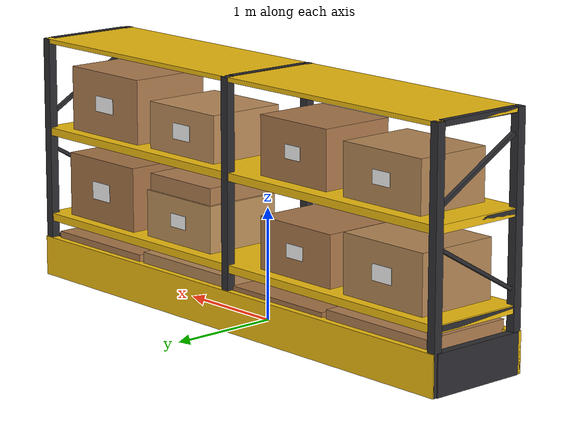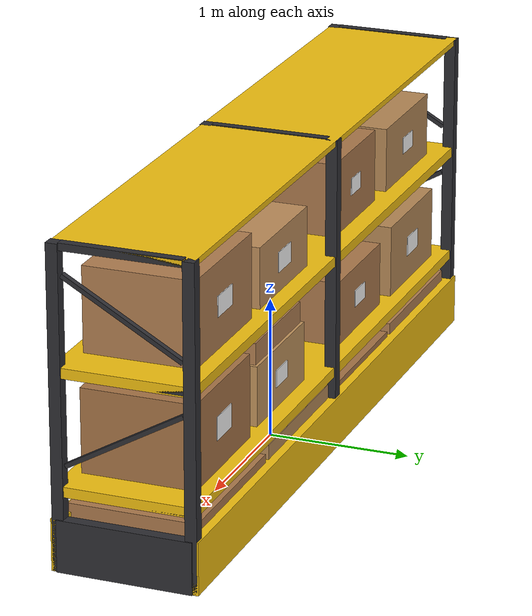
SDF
<?xml version="1.0"?>
<sdf version="1.9">
  <model name="shelf">
    <static>true</static>

    <!-- Single efficient bounding collision for ODE physics -->
    <link name="shelf_link">
      <collision name="shelf_collision">
        <!-- Sits on the floor: box centre at half its height, not at z=0. -->
        <pose>0 0 1.1 0 0 0</pose>
        <geometry>
          <box>
            <size>5.0 1.0 2.2</size>
          </box>
        </geometry>
      </collision>

      <!-- GROUND-LEVEL RACK BODY                       -->
      <!-- The 2D LiDAR scans at z = 0.26 m. Without    -->
      <!-- geometry at that height the rack is sensed   -->
      <!-- as six 80 mm posts while physics treats it   -->
      <!-- as a solid 5.0 x 1.0 x 2.2 box, so Nav2      -->
      <!-- plans straight through it. These base rails  -->
      <!-- and ground-level pallet loads are ordinary   -->
      <!-- racking hardware and make the sensed shape   -->
      <!-- agree with the collision shape.              -->

      <!-- Base protection rails along both aisle faces (z 0.00 - 0.36) -->
      <visual name="base_rail_front"><pose>0 0.46 0.18 0 0 0</pose><geometry><box><size>4.98 0.08 0.36</size></box></geometry><material><ambient>0.88 0.68 0.04 1</ambient><diffuse>0.96 0.76 0.06 1</diffuse></material></visual>
      <visual name="base_rail_rear"><pose>0 -0.46 0.18 0 0 0</pose><geometry><box><size>4.98 0.08 0.36</size></box></geometry><material><ambient>0.88 0.68 0.04 1</ambient><diffuse>0.96 0.76 0.06 1</diffuse></material></visual>
      <!-- End-frame base plates (z 0.00 - 0.36) -->
      <visual name="base_rail_left"><pose>-2.46 0 0.18 0 0 0</pose><geometry><box><size>0.08 0.92 0.36</size></box></geometry><material><ambient>0.12 0.12 0.14 1</ambient><diffuse>0.18 0.18 0.20 1</diffuse></material></visual>
      <visual name="base_rail_right"><pose>2.46 0 0.18 0 0 0</pose><geometry><box><size>0.08 0.92 0.36</size></box></geometry><material><ambient>0.12 0.12 0.14 1</ambient><diffuse>0.18 0.18 0.20 1</diffuse></material></visual>

      <!-- Ground-level pallet bay loads (floor to the tier-1 deck) -->
      <visual name="box_gl_1"><pose>-1.78 0 0.22 0 0 0</pose><geometry><box><size>1.15 0.88 0.44</size></box></geometry><material><ambient>0.60 0.42 0.24 1</ambient><diffuse>0.70 0.50 0.32 1</diffuse></material></visual>
      <visual name="box_gl_2"><pose>-0.60 0 0.20 0 0 0</pose><geometry><box><size>1.10 0.88 0.40</size></box></geometry><material><ambient>0.56 0.38 0.20 1</ambient><diffuse>0.66 0.46 0.28 1</diffuse></material></visual>
      <visual name="box_gl_3"><pose>0.60 0 0.23 0 0 0</pose><geometry><box><size>1.10 0.88 0.46</size></box></geometry><material><ambient>0.62 0.44 0.26 1</ambient><diffuse>0.72 0.54 0.34 1</diffuse></material></visual>
      <visual name="box_gl_4"><pose>1.78 0 0.21 0 0 0</pose><geometry><box><size>1.15 0.88 0.42</size></box></geometry><material><ambient>0.58 0.40 0.22 1</ambient><diffuse>0.68 0.48 0.30 1</diffuse></material></visual>

      <!-- INDUSTRIAL RACK STRUCTURAL FRAME             -->

      <!-- 6 Vertical Structural Uprights (Dark Anthracite Steel) -->
      <visual name="col_fl"><pose>-2.45 0.45 1.1 0 0 0</pose><geometry><box><size>0.08 0.08 2.2</size></box></geometry><material><ambient>0.12 0.12 0.14 1</ambient><diffuse>0.18 0.18 0.20 1</diffuse></material></visual>
      <visual name="col_fr"><pose>2.45 0.45 1.1 0 0 0</pose><geometry><box><size>0.08 0.08 2.2</size></box></geometry><material><ambient>0.12 0.12 0.14 1</ambient><diffuse>0.18 0.18 0.20 1</diffuse></material></visual>
      <visual name="col_rl"><pose>-2.45 -0.45 1.1 0 0 0</pose><geometry><box><size>0.08 0.08 2.2</size></box></geometry><material><ambient>0.12 0.12 0.14 1</ambient><diffuse>0.18 0.18 0.20 1</diffuse></material></visual>
      <visual name="col_rr"><pose>2.45 -0.45 1.1 0 0 0</pose><geometry><box><size>0.08 0.08 2.2</size></box></geometry><material><ambient>0.12 0.12 0.14 1</ambient><diffuse>0.18 0.18 0.20 1</diffuse></material></visual>
      <visual name="col_mc_f"><pose>0 0.45 1.1 0 0 0</pose><geometry><box><size>0.08 0.08 2.2</size></box></geometry><material><ambient>0.12 0.12 0.14 1</ambient><diffuse>0.18 0.18 0.20 1</diffuse></material></visual>
      <visual name="col_mc_r"><pose>0 -0.45 1.1 0 0 0</pose><geometry><box><size>0.08 0.08 2.2</size></box></geometry><material><ambient>0.12 0.12 0.14 1</ambient><diffuse>0.18 0.18 0.20 1</diffuse></material></visual>

      <!-- Frame Side Horizontal Cross-Ties (Connecting front & rear columns) -->
      <!-- Left End Frame Ties -->
      <visual name="tie_l_bot"><pose>-2.45 0 0.15 0 0 0</pose><geometry><box><size>0.06 0.82 0.05</size></box></geometry><material><ambient>0.12 0.12 0.14 1</ambient><diffuse>0.18 0.18 0.20 1</diffuse></material></visual>
      <visual name="tie_l_t1"><pose>-2.45 0 0.55 0 0 0</pose><geometry><box><size>0.06 0.82 0.05</size></box></geometry><material><ambient>0.12 0.12 0.14 1</ambient><diffuse>0.18 0.18 0.20 1</diffuse></material></visual>
      <visual name="tie_l_t2"><pose>-2.45 0 1.35 0 0 0</pose><geometry><box><size>0.06 0.82 0.05</size></box></geometry><material><ambient>0.12 0.12 0.14 1</ambient><diffuse>0.18 0.18 0.20 1</diffuse></material></visual>
      <visual name="tie_l_top"><pose>-2.45 0 2.18 0 0 0</pose><geometry><box><size>0.06 0.82 0.05</size></box></geometry><material><ambient>0.12 0.12 0.14 1</ambient><diffuse>0.18 0.18 0.20 1</diffuse></material></visual>

      <!-- Right End Frame Ties -->
      <visual name="tie_r_bot"><pose>2.45 0 0.15 0 0 0</pose><geometry><box><size>0.06 0.82 0.05</size></box></geometry><material><ambient>0.12 0.12 0.14 1</ambient><diffuse>0.18 0.18 0.20 1</diffuse></material></visual>
      <visual name="tie_r_t1"><pose>2.45 0 0.55 0 0 0</pose><geometry><box><size>0.06 0.82 0.05</size></box></geometry><material><ambient>0.12 0.12 0.14 1</ambient><diffuse>0.18 0.18 0.20 1</diffuse></material></visual>
      <visual name="tie_r_t2"><pose>2.45 0 1.35 0 0 0</pose><geometry><box><size>0.06 0.82 0.05</size></box></geometry><material><ambient>0.12 0.12 0.14 1</ambient><diffuse>0.18 0.18 0.20 1</diffuse></material></visual>
      <visual name="tie_r_top"><pose>2.45 0 2.18 0 0 0</pose><geometry><box><size>0.06 0.82 0.05</size></box></geometry><material><ambient>0.12 0.12 0.14 1</ambient><diffuse>0.18 0.18 0.20 1</diffuse></material></visual>

      <!-- Center Frame Ties -->
      <visual name="tie_m_bot"><pose>0 0 0.15 0 0 0</pose><geometry><box><size>0.06 0.82 0.05</size></box></geometry><material><ambient>0.12 0.12 0.14 1</ambient><diffuse>0.18 0.18 0.20 1</diffuse></material></visual>
      <visual name="tie_m_t1"><pose>0 0 0.55 0 0 0</pose><geometry><box><size>0.06 0.82 0.05</size></box></geometry><material><ambient>0.12 0.12 0.14 1</ambient><diffuse>0.18 0.18 0.20 1</diffuse></material></visual>
      <visual name="tie_m_t2"><pose>0 0 1.35 0 0 0</pose><geometry><box><size>0.06 0.82 0.05</size></box></geometry><material><ambient>0.12 0.12 0.14 1</ambient><diffuse>0.18 0.18 0.20 1</diffuse></material></visual>
      <visual name="tie_m_top"><pose>0 0 2.18 0 0 0</pose><geometry><box><size>0.06 0.82 0.05</size></box></geometry><material><ambient>0.12 0.12 0.14 1</ambient><diffuse>0.18 0.18 0.20 1</diffuse></material></visual>

      <!-- Side Truss End Diagonal Bracing (Confined cleanly to outer end panels) -->
      <visual name="brace_left_lower"><pose>-2.45 0 0.95 0.52 0 0</pose><geometry><box><size>0.04 0.92 0.03</size></box></geometry><material><ambient>0.12 0.12 0.14 1</ambient><diffuse>0.18 0.18 0.20 1</diffuse></material></visual>
      <visual name="brace_left_upper"><pose>-2.45 0 1.76 -0.52 0 0</pose><geometry><box><size>0.04 0.92 0.03</size></box></geometry><material><ambient>0.12 0.12 0.14 1</ambient><diffuse>0.18 0.18 0.20 1</diffuse></material></visual>
      <visual name="brace_right_lower"><pose>2.45 0 0.95 0.52 0 0</pose><geometry><box><size>0.04 0.92 0.03</size></box></geometry><material><ambient>0.12 0.12 0.14 1</ambient><diffuse>0.18 0.18 0.20 1</diffuse></material></visual>
      <visual name="brace_right_upper"><pose>2.45 0 1.76 -0.52 0 0</pose><geometry><box><size>0.04 0.92 0.03</size></box></geometry><material><ambient>0.12 0.12 0.14 1</ambient><diffuse>0.18 0.18 0.20 1</diffuse></material></visual>

      <!-- Heavy-Duty Safety Yellow Shelf Beams & Decks -->
      <!-- Tier 1 Deck (Z = 0.55m) -->
      <visual name="deck_t1"><pose>0 0 0.55 0 0 0</pose><geometry><box><size>4.96 0.96 0.07</size></box></geometry><material><ambient>0.88 0.68 0.04 1</ambient><diffuse>0.96 0.76 0.06 1</diffuse><specular>0.3 0.3 0.3 1</specular></material></visual>
      <!-- Tier 2 Deck (Z = 1.35m) -->
      <visual name="deck_t2"><pose>0 0 1.35 0 0 0</pose><geometry><box><size>4.96 0.96 0.07</size></box></geometry><material><ambient>0.88 0.68 0.04 1</ambient><diffuse>0.96 0.76 0.06 1</diffuse><specular>0.3 0.3 0.3 1</specular></material></visual>
      <!-- Top Cap Safety Rail (Z = 2.18m) -->
      <visual name="deck_top"><pose>0 0 2.18 0 0 0</pose><geometry><box><size>4.96 0.96 0.04</size></box></geometry><material><ambient>0.88 0.68 0.04 1</ambient><diffuse>0.96 0.76 0.06 1</diffuse></material></visual>

      <!-- DETAILED CARGO BOXES WITH LABELS             -->

      <!-- Tier 1 Left Pallet Box Stack (Bay 1: X = -1.22) -->
      <visual name="box_t1_l1"><pose>-1.80 0 0.85 0 0 0</pose><geometry><box><size>0.90 0.78 0.52</size></box></geometry><material><ambient>0.62 0.44 0.26 1</ambient><diffuse>0.72 0.54 0.34 1</diffuse></material></visual>
      <visual name="label_t1_l1_f"><pose>-1.80 0.395 0.85 0 0 0</pose><geometry><box><size>0.22 0.005 0.14</size></box></geometry><material><ambient>0.95 0.95 0.95 1</ambient><diffuse>0.98 0.98 0.98 1</diffuse></material></visual>
      <visual name="label_t1_l1_b"><pose>-1.80 -0.395 0.85 0 0 0</pose><geometry><box><size>0.22 0.005 0.14</size></box></geometry><material><ambient>0.95 0.95 0.95 1</ambient><diffuse>0.98 0.98 0.98 1</diffuse></material></visual>

      <visual name="box_t1_l2"><pose>-0.75 0 0.82 0 0 0</pose><geometry><box><size>0.85 0.74 0.46</size></box></geometry><material><ambient>0.58 0.40 0.22 1</ambient><diffuse>0.68 0.48 0.30 1</diffuse></material></visual>
      <visual name="label_t1_l2_f"><pose>-0.75 0.375 0.82 0 0 0</pose><geometry><box><size>0.20 0.005 0.12</size></box></geometry><material><ambient>0.95 0.95 0.95 1</ambient><diffuse>0.98 0.98 0.98 1</diffuse></material></visual>

      <!-- Tier 1 Right Cargo (Bay 2: X = +1.22) -->
      <visual name="box_t1_r1"><pose>0.75 0 0.80 0 0 0</pose><geometry><box><size>0.85 0.74 0.42</size></box></geometry><material><ambient>0.65 0.48 0.28 1</ambient><diffuse>0.76 0.58 0.36 1</diffuse></material></visual>
      <visual name="box_t1_r1_top"><pose>0.75 0 1.08 0 0 0</pose><geometry><box><size>0.80 0.70 0.16</size></box></geometry><material><ambient>0.60 0.42 0.24 1</ambient><diffuse>0.70 0.50 0.32 1</diffuse></material></visual>
      <visual name="label_t1_r1_f"><pose>0.75 0.375 0.80 0 0 0</pose><geometry><box><size>0.20 0.005 0.12</size></box></geometry><material><ambient>0.95 0.95 0.95 1</ambient><diffuse>0.98 0.98 0.98 1</diffuse></material></visual>

      <visual name="box_t1_r2"><pose>1.80 0 0.88 0 0 0</pose><geometry><box><size>0.90 0.78 0.58</size></box></geometry><material><ambient>0.56 0.38 0.20 1</ambient><diffuse>0.66 0.46 0.28 1</diffuse></material></visual>
      <visual name="label_t1_r2_f"><pose>1.80 0.395 0.88 0 0 0</pose><geometry><box><size>0.24 0.005 0.16</size></box></geometry><material><ambient>0.95 0.95 0.95 1</ambient><diffuse>0.98 0.98 0.98 1</diffuse></material></visual>

      <!-- Tier 2 Upper Storage Cargo -->
      <visual name="box_t2_1"><pose>-1.75 0 1.62 0 0 0</pose><geometry><box><size>0.88 0.72 0.46</size></box></geometry><material><ambient>0.62 0.44 0.26 1</ambient><diffuse>0.72 0.54 0.34 1</diffuse></material></visual>
      <visual name="label_t2_1_f"><pose>-1.75 0.365 1.62 0 0 0</pose><geometry><box><size>0.20 0.005 0.12</size></box></geometry><material><ambient>0.95 0.95 0.95 1</ambient><diffuse>0.98 0.98 0.98 1</diffuse></material></visual>

      <visual name="box_t2_2"><pose>-0.70 0 1.65 0 0 0</pose><geometry><box><size>0.80 0.70 0.52</size></box></geometry><material><ambient>0.58 0.40 0.22 1</ambient><diffuse>0.68 0.48 0.30 1</diffuse></material></visual>
      <visual name="label_t2_2_f"><pose>-0.70 0.355 1.65 0 0 0</pose><geometry><box><size>0.18 0.005 0.12</size></box></geometry><material><ambient>0.95 0.95 0.95 1</ambient><diffuse>0.98 0.98 0.98 1</diffuse></material></visual>

      <visual name="box_t2_3"><pose>0.70 0 1.60 0 0 0</pose><geometry><box><size>0.85 0.74 0.42</size></box></geometry><material><ambient>0.65 0.48 0.28 1</ambient><diffuse>0.75 0.56 0.36 1</diffuse></material></visual>
      <visual name="label_t2_3_f"><pose>0.70 0.375 1.60 0 0 0</pose><geometry><box><size>0.22 0.005 0.14</size></box></geometry><material><ambient>0.95 0.95 0.95 1</ambient><diffuse>0.98 0.98 0.98 1</diffuse></material></visual>

      <visual name="box_t2_4"><pose>1.75 0 1.68 0 0 0</pose><geometry><box><size>0.92 0.76 0.58</size></box></geometry><material><ambient>0.60 0.42 0.24 1</ambient><diffuse>0.70 0.50 0.32 1</diffuse></material></visual>
      <visual name="label_t2_4_f"><pose>1.75 0.385 1.68 0 0 0</pose><geometry><box><size>0.24 0.005 0.14</size></box></geometry><material><ambient>0.95 0.95 0.95 1</ambient><diffuse>0.98 0.98 0.98 1</diffuse></material></visual>

    </link>
  </model>
</sdf>
